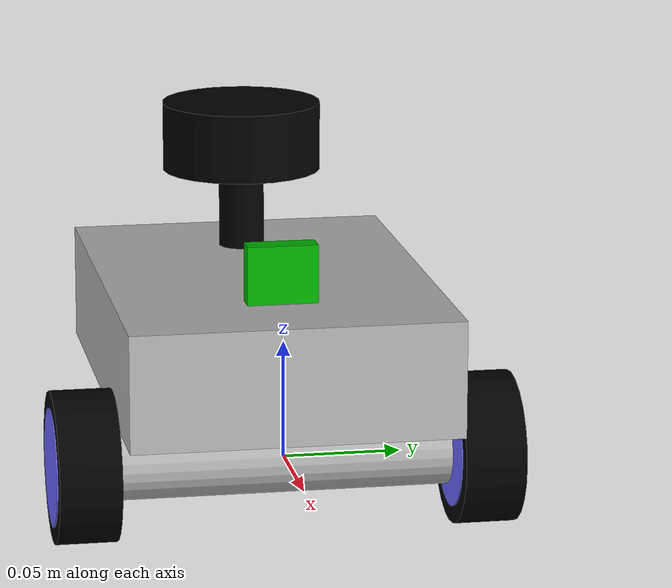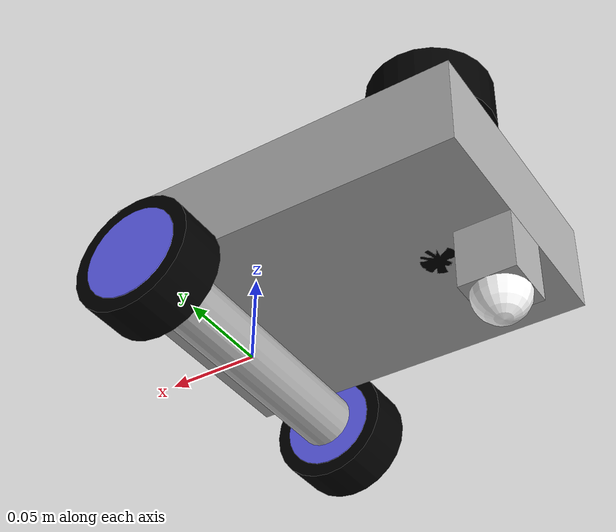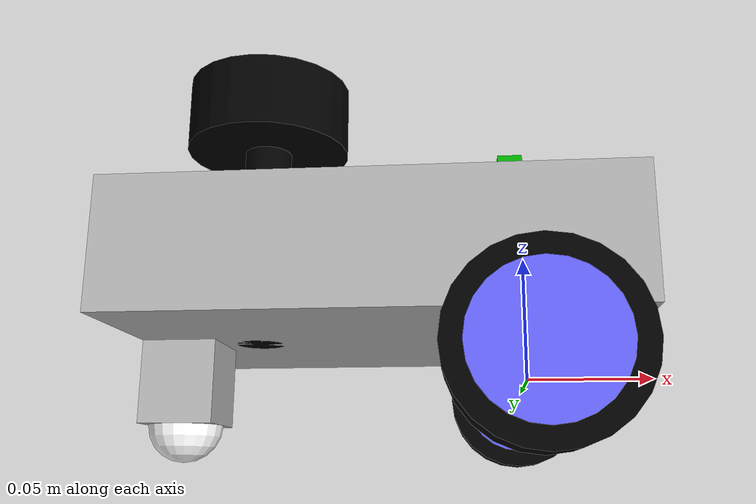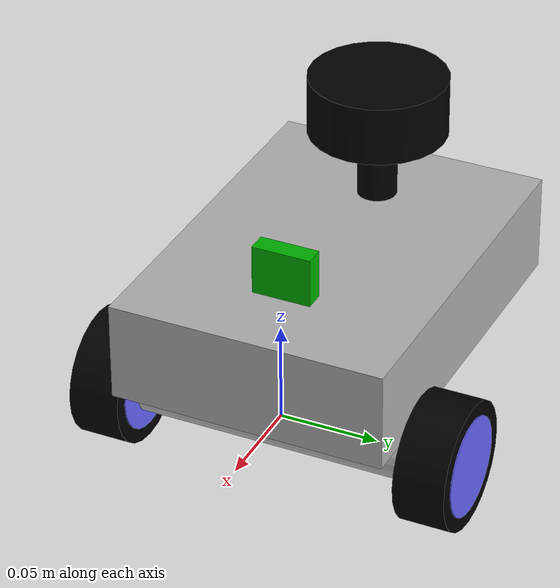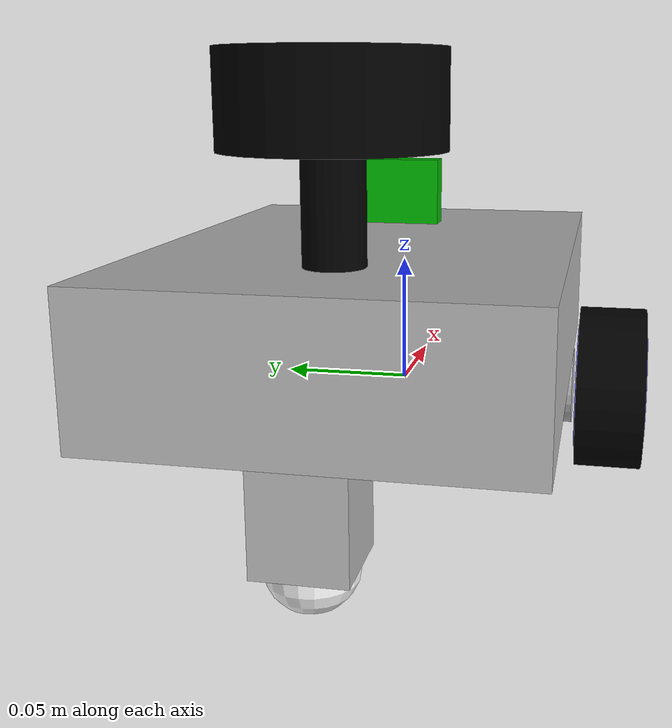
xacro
<?xml version="1.0"?>
<robot xmlns:xacro="http://www.ros.org/wiki/xacro"  name="robot">

    <xacro:arg name="use_ros2_control" default="true"/>
    <xacro:arg name="sim_mode" default="false"/>

    <xacro:include filename="robot_core.xacro" />

    <xacro:if value="$(arg use_ros2_control)">
        <xacro:include filename="ros2_control.xacro" />
    </xacro:if>
    <xacro:unless value="$(arg use_ros2_control)">
        <xacro:include filename="gazebo_control.xacro" />
    </xacro:unless>

    <xacro:include filename="lidar.xacro" />
    <xacro:include filename="camera.xacro" />

</robot>

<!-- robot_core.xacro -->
<robot xmlns:xacro="http://www.ros.org/wiki/xacro" >

    <xacro:include filename="inertials_colors.xacro"/>

    <!-- KONSTANTY >> realne rozmery -->

    <xacro:property name="chassis_length" value="0.195"/>
    <xacro:property name="chassis_width" value="0.140"/>
    <xacro:property name="chassis_height" value="0.05"/>
    <xacro:property name="chassis_mass" value="1.5"/>

    <xacro:property name="main_wheel_radius" value="0.0323"/>
    <xacro:property name="main_wheel_thickness" value="0.026"/>
    <xacro:property name="main_wheel_mass" value="0.1"/>

    <xacro:property name="main_wheel_offset_x" value="0.155"/>
    <xacro:property name="main_wheel_offset_y" value="0.085"/>
    <xacro:property name="main_wheel_offset_z" value="-0.016"/>
    <xacro:property name="caster_wheeel_radius" value="0.015"/>
    <xacro:property name="caster_wheeel_mass" value="0.04"/>
    <xacro:property name="caster_wheeel_offset_x" value="0.015"/>
    <xacro:property name="caster_wheeel_offset_z" value="${main_wheel_offset_z - main_wheel_radius + caster_wheeel_radius}"/>

    <!-- BASE LINK >> stred mezi hlavnimi koli-->

    <link name="base_link">

    </link>

    <!-- BASE_FOOTPRINT >> link pro navigaci/lokalizaci -->

    <joint name="base_footprint_joint" type="fixed">
        <parent link="base_link"/>
        <child link="base_footprint"/>
        <origin xyz="0 0 0" rpy="0 0 0"/>
    </joint>

    <link name="base_footprint">
    </link>

    <!-- CHASSIS LINK >> link na konci uprostred robota -->

    <joint name="chassis_joint" type="fixed">
        <parent link="base_link"/>
        <child link="chassis"/>
        <origin xyz="${-main_wheel_offset_x} 0 ${-main_wheel_offset_z}"/>
    </joint>

    <link name="chassis">
        <visual>
            <origin xyz="${chassis_length/2} 0 ${chassis_height/2}"/>
            <geometry>
                <box size="${chassis_length} ${chassis_width} ${chassis_height}"/>
            </geometry>
            <material name="gray"/>
        </visual>
        <!-- sloupek k podpurnemu kolecku -->
        <visual>
            <origin xyz="${caster_wheeel_offset_x} 0 ${caster_wheeel_offset_z/2}"/>
            <geometry>
                <box size="${caster_wheeel_offset_x*2} ${caster_wheeel_offset_x*2} ${caster_wheeel_offset_z}"/>
            </geometry>
            <material name="gray"/>
        </visual>
        <!-- valec mezi hlavnimi koly pro simulaci motoru -->
        <visual>
            <origin xyz="${main_wheel_offset_x} 0 ${main_wheel_offset_z}" rpy="${pi/2} 0 0" />
            <geometry>
                <cylinder radius="0.015" length="${chassis_width}"/>
            </geometry>
            <material name="gray"/>
        </visual>
        <collision>
            <origin xyz="${chassis_length/2} 0 ${chassis_height/2}"/>
            <geometry>
                <box size="${chassis_length} ${chassis_width} ${chassis_height}"/>
            </geometry>
        </collision>
        <xacro:inertial_box mass="${chassis_mass}" x="${chassis_length}" y="${chassis_width}" z="${chassis_height}">
            <origin xyz="${chassis_length/2} 0 ${chassis_height/2}" rpy="0 0 0"/>
        </xacro:inertial_box>
    </link>

    <gazebo reference="chassis">
        <material>Gazebo/Gray</material>
    </gazebo>

    <!-- LEFT WHEEL LINK  >> link posunuty od base linku-->

    <joint name="left_wheel_joint" type="continuous">
        <parent link="base_link"/>
        <child link="left_wheel"/>
        <origin xyz="0 ${main_wheel_offset_y} 0" rpy="-${pi/2} 0 0" />
        <axis xyz="0 0 1"/>
    </joint>

    <joint name="left_wheel_joint2" type="fixed">
        <parent link="base_link"/>
        <child link="left_wheel2"/>
        <origin xyz="0 ${main_wheel_offset_y} 0" rpy="-${pi/2} 0 0" />
    </joint>

    <!-- atrapa rafku kola, netoci se, jen kvuli vizualu -->

    <link name="left_wheel2">
        <visual>
            <geometry>
                <cylinder radius="0.025" length="${main_wheel_thickness + 0.001}"/>
            </geometry>
            <material name="blue"/>
        </visual>
    </link>
    <gazebo reference="left_wheel2">
        <material>Gazebo/Blue</material>
    </gazebo>

    <link name="left_wheel">
        <visual>
            <geometry>
                <cylinder radius="${main_wheel_radius}" length="${main_wheel_thickness}"/>
            </geometry>
            <material name="black"/>
        </visual>
        <collision>
            <geometry>
                <sphere radius="${main_wheel_radius}"/>
            </geometry>
        </collision>
        <xacro:inertial_cylinder mass="${main_wheel_mass}" length="${main_wheel_thickness}" radius="${main_wheel_radius}">
            <origin xyz="0 0 0" rpy="0 0 0"/>
        </xacro:inertial_cylinder>
    </link>

    <gazebo reference="left_wheel">
        <material>Gazebo/Black</material>
    </gazebo>

    <!-- RIGHT WHEEL LINK >> link posunuty od base linku-->

    <joint name="right_wheel_joint" type="continuous">
        <parent link="base_link"/>
        <child link="right_wheel"/>
        <origin xyz="0 ${-main_wheel_offset_y} 0" rpy="${pi/2} 0 0" />
        <axis xyz="0 0 -1"/>
    </joint>

    <joint name="right_wheel_joint2" type="fixed">
        <parent link="base_link"/>
        <child link="right_wheel2"/>
        <origin xyz="0 ${-main_wheel_offset_y} 0" rpy="${pi/2} 0 0" />
    </joint>

    <!-- atrapa rafku kola, netoci se, jen kvuli vizualu -->

    <link name="right_wheel2">
        <visual>
            <geometry>
                <cylinder radius="0.025" length="${main_wheel_thickness + 0.001 }"/>
            </geometry>
            <material name="blue"/>
        </visual>
    </link>
    <gazebo reference="right_wheel2">
        <material>Gazebo/Blue</material>
    </gazebo>

    <link name="right_wheel">
        <visual>
            <geometry>
                <cylinder radius="${main_wheel_radius}" length="${main_wheel_thickness}"/>
            </geometry>
            <material name="black"/>
        </visual>
        <collision>
            <geometry>
                <sphere radius="${main_wheel_radius}"/>
            </geometry>
        </collision>
        <xacro:inertial_cylinder mass="${main_wheel_mass}" length="${main_wheel_thickness}" radius="${main_wheel_radius}">
            <origin xyz="0 0 0" rpy="0 0 0"/>
        </xacro:inertial_cylinder>
    </link>

    <gazebo reference="right_wheel">
        <material>Gazebo/Black</material>
    </gazebo>

    <!-- CASTER WHEEL LINK >> pomocne kolecko -->

    <joint name="caster_wheel_joint" type="fixed">
        <parent link="chassis"/>
        <child link="caster_wheel"/>
        <origin xyz="${caster_wheeel_offset_x} 0 ${caster_wheeel_offset_z}"/>
    </joint>

    <link name="caster_wheel">
        <visual>
            <geometry>
                <sphere radius="${caster_wheeel_radius}"/>
            </geometry>
            <material name="white"/>
        </visual>
        <collision>
            <geometry>
                <sphere radius="${caster_wheeel_radius}"/>
            </geometry>
        </collision>
        <xacro:inertial_sphere mass="${caster_wheeel_mass}" radius="${caster_wheeel_radius}">
            <origin xyz="0 0 0" rpy="0 0 0"/>
        </xacro:inertial_sphere>
    </link>

    <gazebo reference="caster_wheel">
        <material>Gazebo/White</material>
        <mu1 value="0.001"/>
        <mu2 value="0.001"/>
    </gazebo>

</robot>

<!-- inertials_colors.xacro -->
<robot xmlns:xacro="http://www.ros.org/wiki/xacro" >

    <!-- BARVY >> deklarace barev pro rviz -->

    <material name="white">
        <color rgba="1 1 1 1" />
    </material>

    <material name="orange">
        <color rgba="1 0.3 0.1 1"/>
    </material>

    <material name="blue">
        <color rgba="0.4 0.4 1 1"/>
    </material>

    <material name="black">
        <color rgba="0 0 0 1"/>
    </material>

    <material name="red">
        <color rgba="1 0 0 1"/>
    </material>

    <material name="gray">
    <color rgba="0.7 0.7 0.7 1"/>
    </material>

    <material name="green">
    <color rgba="0 0.7 0 1"/>
    </material>

    <!-- INERTIALS >> vypocet hmotnosti teles -->

    <xacro:macro name="inertial_sphere" params="mass radius *origin">
        <inertial>
            <xacro:insert_block name="origin"/>
            <mass value="${mass}" />
            <inertia ixx="${(2/5) * mass * (radius*radius)}" ixy="0.0" ixz="0.0"
                    iyy="${(2/5) * mass * (radius*radius)}" iyz="0.0"
                    izz="${(2/5) * mass * (radius*radius)}" />
        </inertial>
    </xacro:macro>

    <xacro:macro name="inertial_box" params="mass x y z *origin">
        <inertial>
            <xacro:insert_block name="origin"/>
            <mass value="${mass}" />
            <inertia ixx="${(1/12) * mass * (y*y+z*z)}" ixy="0.0" ixz="0.0"
                    iyy="${(1/12) * mass * (x*x+z*z)}" iyz="0.0"
                    izz="${(1/12) * mass * (x*x+y*y)}" />
        </inertial>
    </xacro:macro>

    <xacro:macro name="inertial_cylinder" params="mass length radius *origin">
        <inertial>
            <xacro:insert_block name="origin"/>
            <mass value="${mass}" />
            <inertia ixx="${(1/12) * mass * (3*radius*radius + length*length)}" ixy="0.0" ixz="0.0"
                    iyy="${(1/12) * mass * (3*radius*radius + length*length)}" iyz="0.0"
                    izz="${(1/2) * mass * (radius*radius)}" />
        </inertial>
    </xacro:macro>

</robot>

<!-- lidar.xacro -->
<robot xmlns:xacro="http://www.ros.org/wiki/xacro" >

    <joint name="laser_joint" type="fixed">
        <parent link="chassis"/>
        <child link="laser_frame"/>
        <origin xyz="0.045 0 0.1" rpy="0 0 0"/>
    </joint>

    <link name="laser_frame">
        <visual>
            <geometry>
                <cylinder radius="0.035" length="0.03"/>
            </geometry>
            <material name="black"/>
        </visual>
        <visual>
            <origin xyz="0 0 -0.05"/>
            <geometry>
                <cylinder radius="0.01" length="0.1"/>
            </geometry>
            <material name="black"/>
        </visual>
        <collision>
            <geometry>
                <cylinder radius="0.035" length="0.03"/>
            </geometry>
        </collision>
        <xacro:inertial_cylinder mass="0.1" length="0.03" radius="0.035">
            <origin xyz="0 0 0" rpy="0 0 0"/>
        </xacro:inertial_cylinder>
    </link>

    <gazebo reference="laser_frame">
        <material>Gazebo/Black</material>

        <sensor name="laser" type="ray">
            <pose> 0 0 0 0 0 0 </pose>
            <visualize>false</visualize>
            <update_rate>10</update_rate>
            <ray>
                <scan>
                    <horizontal>
                        <samples>360</samples>
                        <min_angle>-3.14</min_angle>
                        <max_angle>3.14</max_angle>
                    </horizontal>
                </scan>
                <range>
                    <min>0.3</min>
                    <max>12</max>
                </range>
            </ray>
            <plugin name="laser_controller" filename="libgazebo_ros_ray_sensor.so">
                <ros>
                    <argument>~/out:=scan</argument>
                </ros>
                <output_type>sensor_msgs/LaserScan</output_type>
                <frame_name>laser_frame</frame_name>
            </plugin>
        </sensor>
    </gazebo>

</robot>

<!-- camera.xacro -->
<robot xmlns:xacro="http://www.ros.org/wiki/xacro" >

<joint name="camera_joint" type="fixed">
        <parent link="chassis"/>
        <child link="camera_link"/>
        <origin xyz="0.150 0 0.06" rpy="0 0 0"/>
    </joint>

    <link name="camera_link">
        <visual>
            <geometry>
                <box size="0.010 0.03 0.03"/>
            </geometry>
            <material name="green"/>
        </visual>
    </link>

    <joint name="camera_optical_joint" type="fixed">
        <parent link="camera_link"/>
        <child link="camera_link_optical"/>
        <origin xyz="0 0 0" rpy="${-pi/2} 0 ${-pi/2}"/>
    </joint>

    <link name="camera_link_optical"></link>

    <gazebo reference="camera_link">
        <material>Gazebo/Green</material>

        <sensor name="camera" type="camera">
            <pose> 0 0 0 0 0 0 </pose>
            <visualize>true</visualize>
            <update_rate>10</update_rate>
            <camera>
                <horizontal_fov>1.089</horizontal_fov>
                <image>
                    <format>R8G8B8</format>
                    <width>640</width>
                    <height>480</height>
                </image>
                <clip>
                    <near>0.05</near>
                    <far>8.0</far>
                </clip>
            </camera>
            <plugin name="camera_controller" filename="libgazebo_ros_camera.so">
                <frame_name>camera_link_optical</frame_name>
            </plugin>
        </sensor>

    </gazebo>

</robot>
